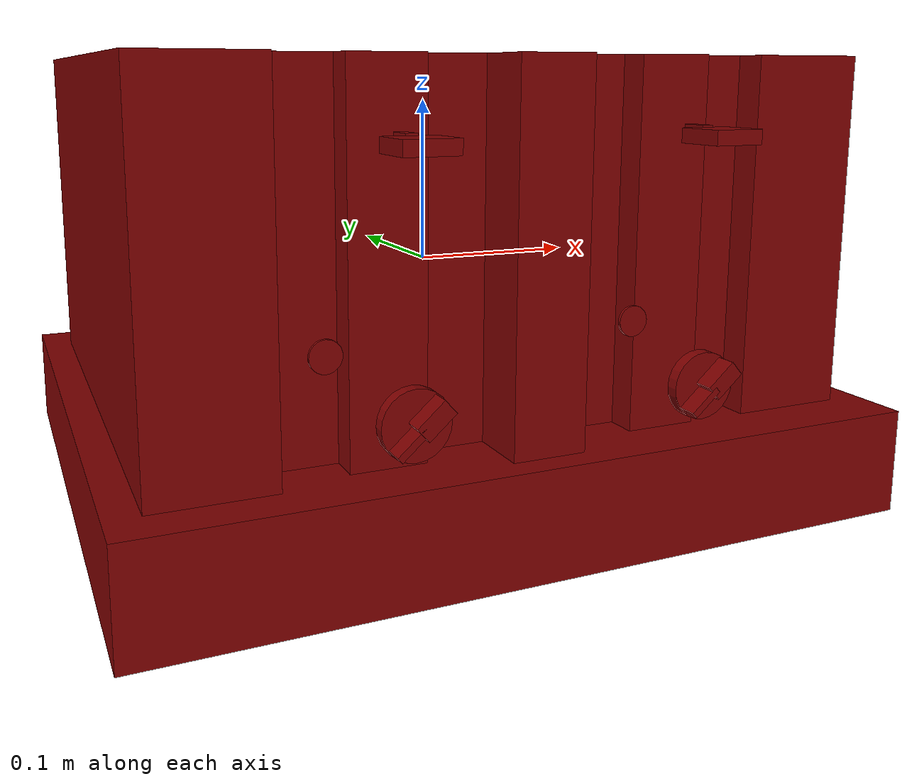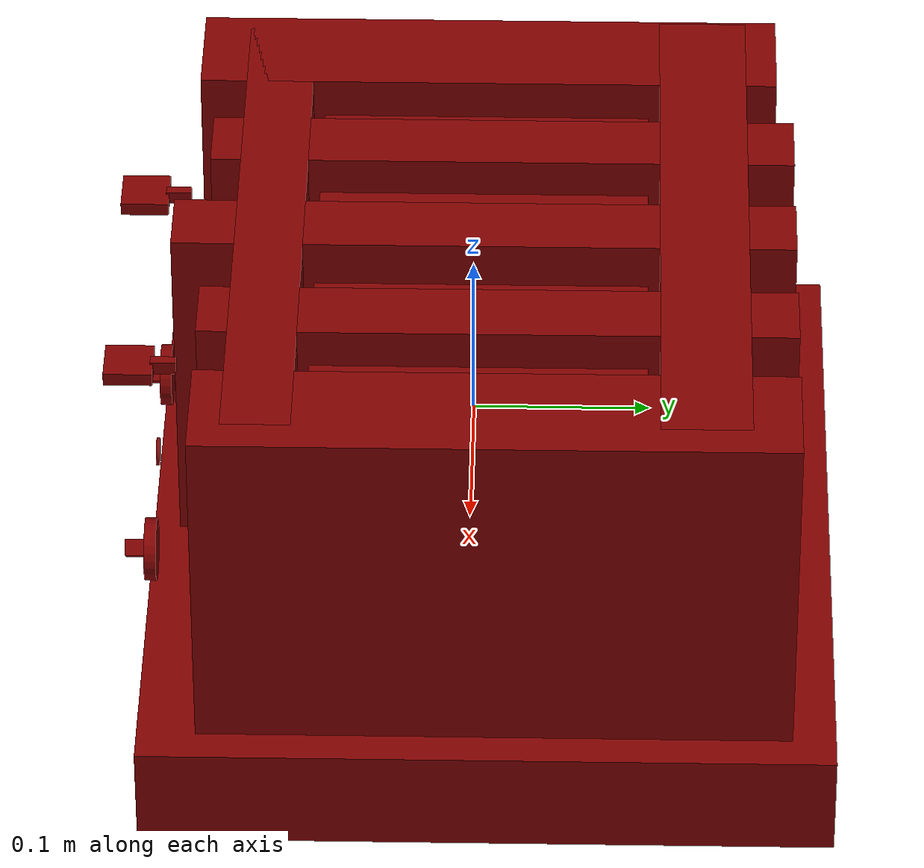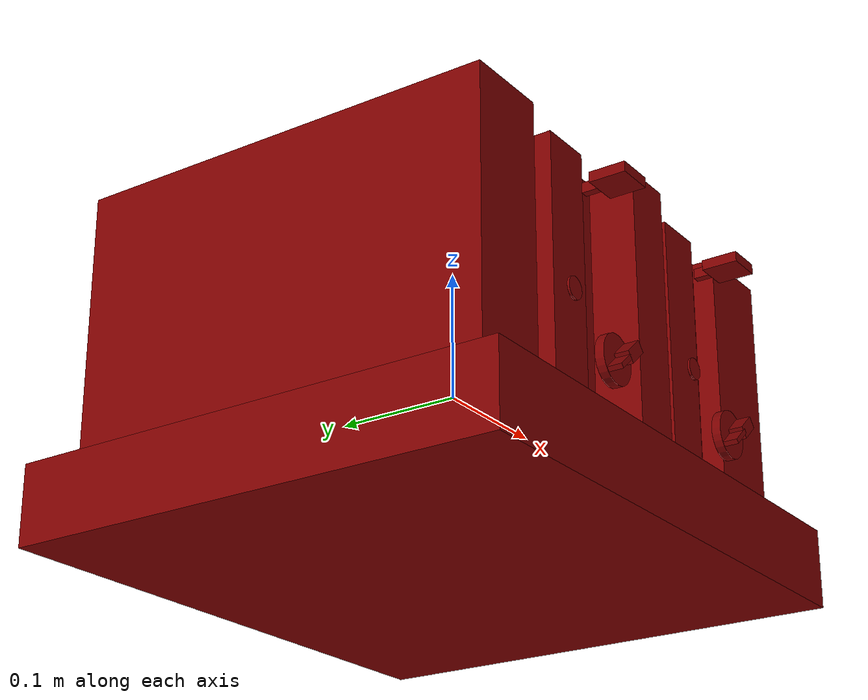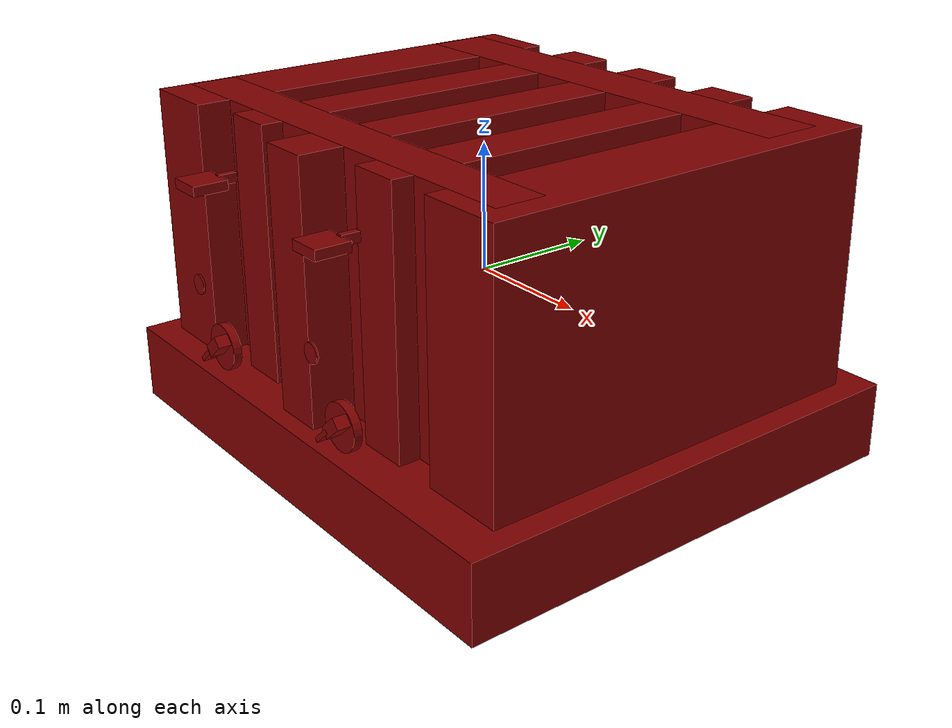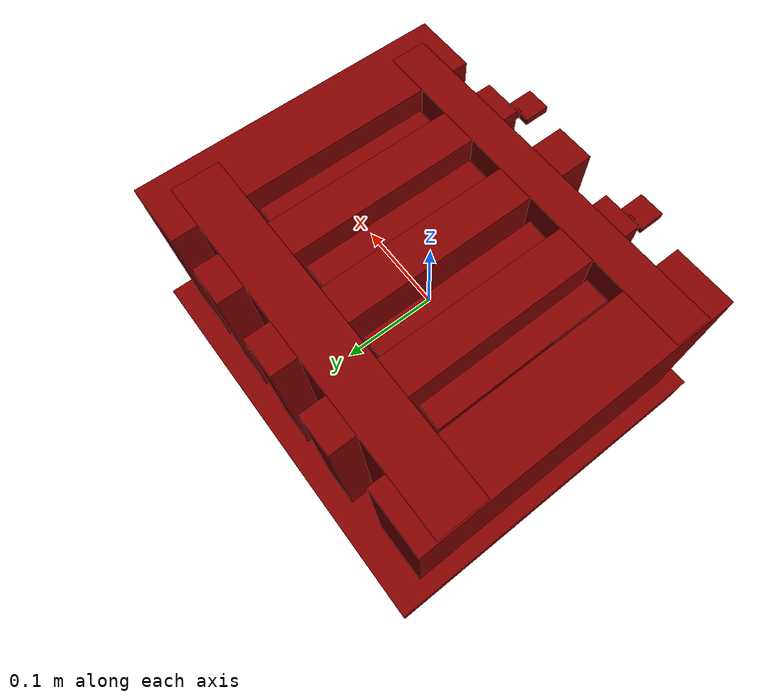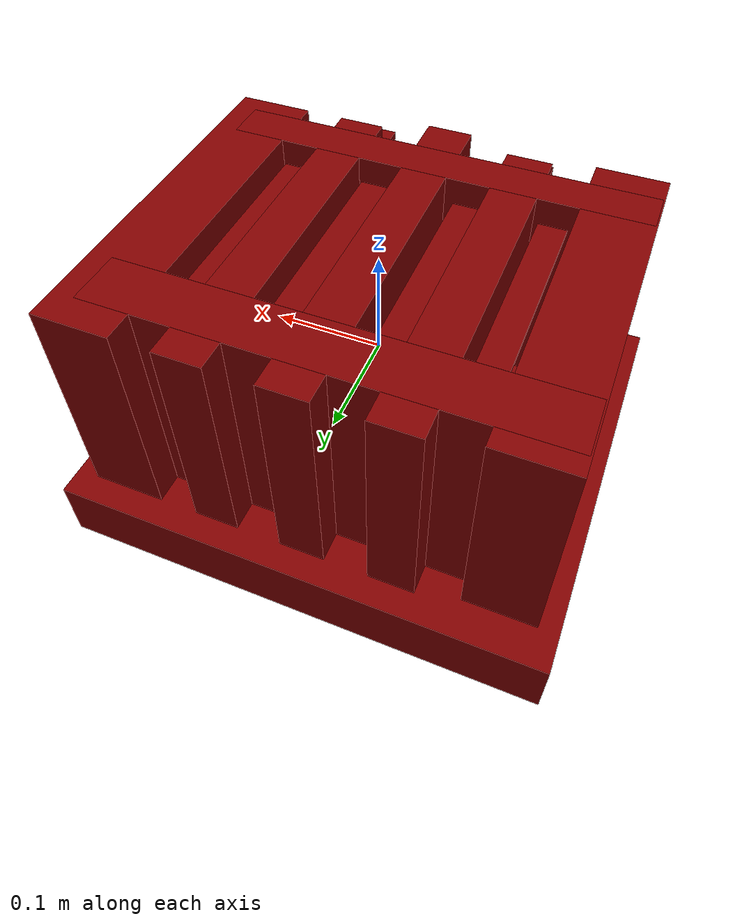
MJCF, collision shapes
<?xml version='1.0' encoding='UTF-8'?>
<mujoco model="model">
  <compiler angle="radian"/>
  <asset>
    <mesh file="visuals/Body001.obj" name="Body001_vis"/>
    <mesh file="visuals/Body002.obj" name="Body002_vis"/>
    <mesh file="visuals/Button001.obj" name="Button001_vis"/>
    <mesh file="visuals/Button002.obj" name="Button002_vis"/>
    <mesh file="visuals/Knob001.obj" name="Knob001_vis"/>
    <mesh file="visuals/Knob002.obj" name="Knob002_vis"/>
    <mesh file="visuals/Lever001.obj" name="Lever001_vis"/>
    <mesh file="visuals/Lever002.obj" name="Lever002_vis"/>
    <texture file="visuals/T_BC001.png" name="Body001_material" type="2d"/>
    <material name="Body001_material" rgba="1 1 1 1.0" texture="Body001_material" shininess="0.2512328028678894" specular="0.3103448502657381"/>
    <texture file="visuals/T_BC001.png" name="Body002_material" type="2d"/>
    <material name="Body002_material" rgba="1 1 1 1.0" texture="Body002_material" shininess="0.2512328028678894" specular="3"/>
    <texture file="visuals/T_BC001.png" name="Button001_material" type="2d"/>
    <material name="Button001_material" rgba="1 1 1 1.0" texture="Button001_material" shininess="0.2512328028678894" specular="0.3103448502657381"/>
    <texture file="visuals/T_BC001.png" name="Button002_material" type="2d"/>
    <material name="Button002_material" rgba="1 1 1 1.0" texture="Button002_material" shininess="0.2512328028678894" specular="0.3103448502657381"/>
    <texture file="visuals/T_BC001.png" name="Knob001_material" type="2d"/>
    <material name="Knob001_material" rgba="1 1 1 1.0" texture="Knob001_material" shininess="0.2512328028678894" specular="0.3103448502657381"/>
    <texture file="visuals/T_BC001.png" name="Knob002_material" type="2d"/>
    <material name="Knob002_material" rgba="1 1 1 1.0" texture="Knob002_material" shininess="0.2512328028678894" specular="0.3103448502657381"/>
    <texture file="visuals/T_BC001.png" name="Lever001_material" type="2d"/>
    <material name="Lever001_material" rgba="1 1 1 1.0" texture="Lever001_material" shininess="0.2512328028678894" specular="0.3103448502657381"/>
    <texture file="visuals/T_BC001.png" name="Lever002_material" type="2d"/>
    <material name="Lever002_material" rgba="1 1 1 1.0" texture="Lever002_material" shininess="0.2512328028678894" specular="0.3103448502657381"/>
  </asset>
  <default>
    <default class="visual">
      <geom conaffinity="0" contype="0" group="1" type="mesh"/>
    </default>
    <default class="collision">
      <geom group="0" rgba="0.5 0 0 0.5"/>
    </default>
    <default class="spawn">
      <geom group="0" rgba="1 1 1 0.5" contype="0" conaffinity="0"/>
      <site group="0" rgba="1 1 1 0.5"/>
    </default>
    <default class="region">
      <geom group="1" conaffinity="0" contype="0" rgba="0 1 0 0"/>
    </default>
  </default>
  <worldbody>
    <body>
      <body name="object">
        <geom mesh="Body001_vis" type="mesh" solimp="0.998 0.998 0.001" solref="0.001 1" density="100" friction="0.95 0.3 0.1" class="visual" material="Body001_material"/>
        <geom class="collision" type="box" pos="-0.0008039735839702189 0.010731078684329987 -0.10637021064758301" size="0.2215774804353714 0.19372491538524628 0.030245793983340263" quat="1.0 0.0 0.0 0.0"/>
        <geom class="collision" type="box" pos="0.16739150881767273 0.014986839145421982 0.023820802569389343" size="0.03358595073223114 0.16535454988479614 0.10209716111421585" quat="1.0 0.0 0.0 0.0"/>
        <geom class="collision" type="box" pos="0.07832012325525284 0.014986839145421982 0.023820802569389343" size="0.0205667857080698 0.16535472869873047 0.10209725052118301" quat="1.0 0.0 0.0 0.0"/>
        <geom class="collision" type="box" pos="-0.0028915766160935163 0.005921733565628529 0.023820802569389343" size="0.02056680992245674 0.17442001402378082 0.10209734737873077" quat="1.0 0.0 0.0 0.0"/>
        <geom class="collision" type="box" pos="-0.08343485742807388 0.014986839145421982 0.023820802569389343" size="0.020566832274198532 0.16535510122776031 0.10209743678569794" quat="1.0 0.0 0.0 0.0"/>
        <geom class="collision" type="box" pos="-0.1726674735546112 0.005758182145655155 0.023820802569389343" size="0.03192980960011482 0.16566842794418335 0.1020975261926651" quat="1.0 0.0 0.0 0.0"/>
        <geom class="collision" type="box" pos="-0.010854415595531464 -0.11411679536104202 0.023820802569389343" size="0.19233694672584534 0.019172165542840958 0.10209762305021286" quat="1.0 0.0 0.0 0.0"/>
        <geom class="collision" type="box" pos="-0.010854414664208889 0.12903156876564026 0.023820802569389343" size="0.19233714044094086 0.024861643090844154 0.10209771245718002" quat="1.0 0.0 0.0 0.0"/>
        <body name="Body002">
          <geom mesh="Body002_vis" type="mesh" solimp="0.998 0.998 0.001" solref="0.001 1" density="100" friction="0.95 0.3 0.1" class="visual" material="Body002_material"/>
        </body>
        <body name="Button001">
          <joint axis="0.0 1.0 0.0" pos="-0.12473214417695999 -0.17832528054714203 -0.007543154526501894" limited="true" name="Button001_joint" range="0.0 0.001" type="slide" damping="1" frictionloss="1" armature=".01" stiffness="0.05"/>
          <geom mesh="Button001_vis" type="mesh" solimp="0.998 0.998 0.001" solref="0.001 1" density="100" friction="0.95 0.3 0.1" class="visual" material="Button001_material"/>
          <geom class="collision" type="cylinder" pos="-0.12470192462205887 -0.17794683575630188 -0.007621923927217722" size="0.008015644736588001 0.0008173166424967349" quat="0.7071067094802856 0.7071068286895752 0.0 0.0"/>
        </body>
        <body name="Button002">
          <joint axis="0.0 1.0 0.0" pos="0.037341613322496414 -0.17783696949481964 -0.006564802024513483" limited="true" name="Button002_joint" range="0.0 0.001" type="slide" damping="1" frictionloss="1" armature=".01" stiffness="0.05"/>
          <geom mesh="Button002_vis" type="mesh" solimp="0.998 0.998 0.001" solref="0.001 1" density="100" friction="0.95 0.3 0.1" class="visual" material="Button002_material"/>
          <geom class="collision" type="cylinder" pos="0.03736620396375656 -0.17794683575630188 -0.006405805237591267" size="0.007920394651591778 0.0008173166424967349" quat="0.7071067094802856 0.7071068286895752 0.0 0.0"/>
        </body>
        <body name="Knob001">
          <joint axis="0.0 1.0 0.0" pos="-0.08280912041664124 -0.1850302815437317 -0.0434151291847229" limited="true" name="Knob001_joint" range="0.0 4.6774823953448035" type="hinge" damping="0.05" armature="0.001"/>
          <geom mesh="Knob001_vis" type="mesh" solimp="0.998 0.998 0.001" solref="0.001 1" density="100" friction="0.95 0.3 0.1" class="visual" material="Knob001_material"/>
          <geom class="collision" type="cylinder" pos="-0.08294151723384857 -0.18063025176525116 -0.04357225447893143" size="0.017849130555987358 0.0033068787306547165" quat="0.7071067094802856 0.7071068286895752 0.0 0.0"/>
          <geom class="collision" type="box" pos="-0.07746203243732452 -0.18837931752204895 -0.03879585862159729" size="0.0046011232770979404 0.0062120212242007256 0.009160922840237617" quat="0.9117445945739746 5.8163639140749405e-15 0.41075754165649414 5.5188905889735906e-08"/>
          <geom class="collision" type="box" pos="-0.08889894932508469 -0.18837931752204895 -0.0489126592874527" size="0.001808173954486847 0.0062120212242007256 0.009160925634205341" quat="0.9117445945739746 5.8163639140749405e-15 0.41075754165649414 5.5188905889735906e-08"/>
        </body>
        <body name="Knob002">
          <joint axis="0.0 1.0 0.0" pos="0.0792478397488594 -0.1850302815437317 -0.043396711349487305" limited="true" name="Knob002_joint" range="0.0 4.6774823953448035" type="hinge" damping="0.05" armature="0.001"/>
          <geom mesh="Knob002_vis" type="mesh" solimp="0.998 0.998 0.001" solref="0.001 1" density="100" friction="0.95 0.3 0.1" class="visual" material="Knob002_material"/>
          <geom class="collision" type="cylinder" pos="0.07922534644603729 -0.18063025176525116 -0.04357225447893143" size="0.017849130555987358 0.0033068787306547165" quat="0.7071067094802856 0.7071068286895752 0.0 0.0"/>
          <geom class="collision" type="box" pos="0.0843484178185463 -0.18837931752204895 -0.03879585862159729" size="0.0046011232770979404 0.0062120212242007256 0.009160922840237617" quat="0.9117445945739746 5.8163639140749405e-15 0.41075754165649414 5.5188905889735906e-08"/>
          <geom class="collision" type="box" pos="0.07291150093078613 -0.18837931752204895 -0.0489126592874527" size="0.001808173954486847 0.0062120212242007256 0.009160925634205341" quat="0.9117445945739746 5.8163639140749405e-15 0.41075754165649414 5.5188905889735906e-08"/>
        </body>
        <body name="Lever001">
          <joint axis="0.0 0.0 -1.0" pos="-0.08347513526678085 -0.18672265112400055 0.08445806056261063" limited="true" name="Lever001_joint" range="0.0 0.08" type="slide" damping="1" frictionloss="1" armature=".01" stiffness="1" springref="-1.2"/>
          <geom mesh="Lever001_vis" type="mesh" solimp="0.998 0.998 0.001" solref="0.001 1" density="100" friction="0.95 0.3 0.1" class="visual" material="Lever001_material"/>
          <geom class="collision" type="box" pos="-0.08377304673194885 -0.18928496539592743 0.08496540784835815" size="0.013937416486442089 0.013543812558054924 0.0037804965395480394" quat="1.0 0.0 0.0 0.0" name="sideL_lever_knob"/>
          <geom class="collision" type="box" pos="-0.08279931545257568 -0.1702585220336914 0.08602846413850784" size="0.002967136912047863 0.0071246628649532795 0.0037804997991770506" quat="1.0 0.0 0.0 0.0"/>
          <geom class="collision" type="box" pos="-0.046386830508708954 0.00466220173984766 0.10467177629470825" size="0.01279352605342865 0.09296071529388428 0.0016816771822050214" quat="1.0 0.0 0.0 0.0" name="sideL_slotR_floor"/>
          <geom class="collision" type="box" pos="-0.1223103255033493 0.00466220173984766 0.10467177629470825" size="0.01279352605342865 0.09296071529388428 0.0016816752031445503" quat="1.0 0.0 0.0 0.0" name="sideL_slotL_floor"/>
        </body>
        <body name="Lever002">
          <joint axis="0.0 0.0 -1.0" pos="0.07859861850738525 -0.18623431026935577 0.08543641120195389" limited="true" name="Lever002_joint" range="0.0 0.08" type="slide" damping="1" frictionloss="1" armature=".01" stiffness="1" springref="-1.2"/>
          <geom mesh="Lever002_vis" type="mesh" solimp="0.998 0.998 0.001" solref="0.001 1" density="100" friction="0.95 0.3 0.1" class="visual" material="Lever002_material"/>
          <geom class="collision" type="box" pos="0.07772018760442734 -0.18928496539592743 0.08565933257341385" size="0.013392513617873192 0.01354378554970026 0.0037804844323545694" quat="1.0 0.0 0.0 0.0" name="sideR_lever_knob"/>
          <geom class="collision" type="box" pos="0.0786939188838005 -0.1702585220336914 0.08672238886356354" size="0.002967136912047863 0.0071246628649532795 0.003780491417273879" quat="1.0 0.0 0.0 0.0"/>
          <geom class="collision" type="box" pos="0.11570306122303009 0.00466220173984766 0.10467177629470825" size="0.01279352605342865 0.09296071529388428 0.0016816732240840793" quat="1.0 0.0 0.0 0.0" name="sideR_slotR_floor"/>
          <geom class="collision" type="box" pos="0.03977956995368004 0.00466220173984766 0.10467177629470825" size="0.01279352605342865 0.09296071529388428 0.0016816712450236082" quat="1.0 0.0 0.0 0.0" name="sideR_slotL_floor"/>
        </body>
        <geom class="region" name="reg_main" type="box" pos="0.0 0.013964811339974403 -7.216449660063518e-16" size="0.22611016035079956 0.19294555485248566 0.13661642372608185"/>
      </body>
    </body>
  </worldbody>
  <actuator>
    <motor name="Button001_joint_actuator" joint="Button001_joint" gear="0.5"/>
    <motor name="Button002_joint_actuator" joint="Button002_joint" gear="0.5"/>
    <motor name="Knob001_joint_actuator" joint="Knob001_joint" gear="10"/>
    <motor name="Knob002_joint_actuator" joint="Knob002_joint" gear="10"/>
    <motor name="Lever001_joint_actuator" joint="Lever001_joint" gear="5"/>
    <motor name="Lever002_joint_actuator" joint="Lever002_joint" gear="5"/>
  </actuator>
</mujoco>
